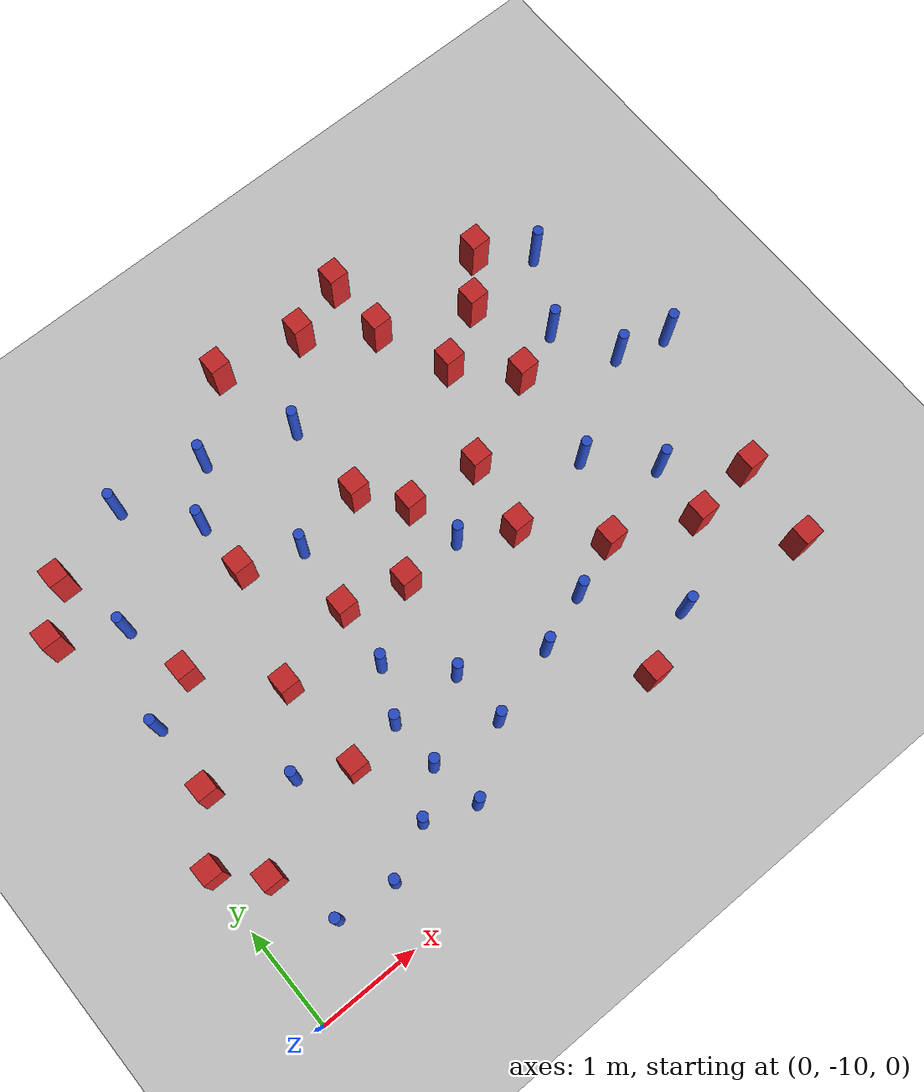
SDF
<sdf version="1.6">
 <world name="default">
  <model name="ground_plane">
   <static>1</static>
   <link name="link">
    <collision name="collision">
     <geometry><plane><normal>0 0 1</normal><size>100 100</size></plane></geometry>
     <surface><friction><ode><mu>100</mu><mu2>50</mu2></ode></friction></surface>
    </collision>
    <visual name="visual">
     <cast_shadows>0</cast_shadows>
     <geometry><plane><normal>0 0 1</normal><size>100 100</size></plane></geometry>
     <material>
      <ambient>1.0 1.0 1.0 1.0</ambient>
      <diffuse>0.8 0.8 0.8 1.0</diffuse>
      <specular>0.01 0.01 0.01 1.000000</specular>
     </material>
    </visual>
   </link>
  </model>
  <model name="pole_obstacle6">
   <static>true</static>
   <pose>6.08152852984 -5.63300464826 2.88873142074e-08 -9.90536690842e-09 4.60219948965e-07 -1.20965994976e-07</pose>
   <link name="link">
    <pose>0 0 0.3 0 -0 0</pose>
    <inertial>
     <mass>1</mass>
     <inertia><ixx>0.145833</ixx><ixy>0</ixy><ixz>0</ixz><iyy>0.145833</iyy><iyz>0</iyz><izz>0.125</izz></inertia>
    </inertial>
    <collision name="collision">
     <geometry><cylinder><radius>0.05</radius><length>.6</length></cylinder></geometry>
    </collision>
    <visual name="visual">
     <geometry><cylinder><radius>0.05</radius><length>.6</length></cylinder></geometry>
     <material>
      <script><name>Gazebo/Blue</name><uri>file://media/materials/scripts/gazebo.material</uri></script>
     </material>
    </visual>
   </link>
  </model>
  <model name="square_post_obstacle7">
   <static>true</static>
   <pose>1.57833472181 -8.45021443569 8.22691968438e-08 7.2212513382e-06 -7.54495500217e-07 2.29674213826e-05</pose>
   <link name="link">
    <pose>0 0 0.25 0 -0 0</pose>
    <inertial>
     <mass>100</mass>
     <inertia>
      <ixx>0.166667</ixx>
      <ixy>0</ixy>
      <ixz>0</ixz>
      <iyy>0.166667</iyy>
      <iyz>0</iyz>
      <izz>0.166667</izz>
     </inertia>
    </inertial>
    <collision name="collision"><geometry><box><size>.2 .2 .5</size></box></geometry></collision>
    <visual name="visual">
     <geometry><box><size>.2 .2 .5</size></box></geometry>
     <material>
      <script><name>Gazebo/Red</name><uri>file://media/materials/scripts/gazebo.material</uri></script>
     </material>
    </visual>
   </link>
  </model>
  <model name="pole_obstacle19">
   <static>true</static>
   <pose>5.99709892169 -6.95808218375 2.88873142074e-08 -9.90536690842e-09 4.60219948965e-07 -1.20965994976e-07</pose>
   <link name="link">
    <pose>0 0 0.3 0 -0 0</pose>
    <inertial>
     <mass>1</mass>
     <inertia><ixx>0.145833</ixx><ixy>0</ixy><ixz>0</ixz><iyy>0.145833</iyy><iyz>0</iyz><izz>0.125</izz></inertia>
    </inertial>
    <collision name="collision">
     <geometry><cylinder><radius>0.05</radius><length>.6</length></cylinder></geometry>
    </collision>
    <visual name="visual">
     <geometry><cylinder><radius>0.05</radius><length>.6</length></cylinder></geometry>
     <material>
      <script><name>Gazebo/Blue</name><uri>file://media/materials/scripts/gazebo.material</uri></script>
     </material>
    </visual>
   </link>
  </model>
  <model name="pole_obstacle22">
   <static>true</static>
   <pose>2.46301673832 -6.58063587267 2.88873142074e-08 -9.90536689859e-09 4.60219948989e-07 -1.20965994961e-07</pose>
   <link name="link">
    <pose>0 0 0.3 0 -0 0</pose>
    <inertial>
     <mass>1</mass>
     <inertia><ixx>0.145833</ixx><ixy>0</ixy><ixz>0</ixz><iyy>0.145833</iyy><iyz>0</iyz><izz>0.125</izz></inertia>
    </inertial>
    <collision name="collision">
     <geometry><cylinder><radius>0.05</radius><length>.6</length></cylinder></geometry>
    </collision>
    <visual name="visual">
     <geometry><cylinder><radius>0.05</radius><length>.6</length></cylinder></geometry>
     <material>
      <script><name>Gazebo/Blue</name><uri>file://media/materials/scripts/gazebo.material</uri></script>
     </material>
    </visual>
   </link>
  </model>
  <model name="square_post_obstacle18">
   <static>true</static>
   <pose>0.560268090838 -5.44637382726 8.22691968438e-08 7.2212513382e-06 -7.54495500217e-07 2.29674213826e-05</pose>
   <link name="link">
    <pose>0 0 0.25 0 -0 0</pose>
    <inertial>
     <mass>100</mass>
     <inertia>
      <ixx>0.166667</ixx>
      <ixy>0</ixy>
      <ixz>0</ixz>
      <iyy>0.166667</iyy>
      <iyz>0</iyz>
      <izz>0.166667</izz>
     </inertia>
    </inertial>
    <collision name="collision"><geometry><box><size>.2 .2 .5</size></box></geometry></collision>
    <visual name="visual">
     <geometry><box><size>.2 .2 .5</size></box></geometry>
     <material>
      <script><name>Gazebo/Red</name><uri>file://media/materials/scripts/gazebo.material</uri></script>
     </material>
    </visual>
   </link>
  </model>
  <model name="pole_obstacle29">
   <static>true</static>
   <pose>1.73550957042 -9.21399171767 2.88873142074e-08 -9.90536690474e-09 4.60219948974e-07 -1.2096599497e-07</pose>
   <link name="link">
    <pose>0 0 0.3 0 -0 0</pose>
    <inertial>
     <mass>1</mass>
     <inertia><ixx>0.145833</ixx><ixy>0</ixy><ixz>0</ixz><iyy>0.145833</iyy><iyz>0</iyz><izz>0.125</izz></inertia>
    </inertial>
    <collision name="collision">
     <geometry><cylinder><radius>0.05</radius><length>.6</length></cylinder></geometry>
    </collision>
    <visual name="visual">
     <geometry><cylinder><radius>0.05</radius><length>.6</length></cylinder></geometry>
     <material>
      <script><name>Gazebo/Blue</name><uri>file://media/materials/scripts/gazebo.material</uri></script>
     </material>
    </visual>
   </link>
  </model>
  <model name="pole_obstacle32">
   <static>true</static>
   <pose>3.58091865514 -8.71479385178 2.88873142074e-08 -9.90536692318e-09 4.6021994893e-07 -1.20965994988e-07</pose>
   <link name="link">
    <pose>0 0 0.3 0 -0 0</pose>
    <inertial>
     <mass>1</mass>
     <inertia><ixx>0.145833</ixx><ixy>0</ixy><ixz>0</ixz><iyy>0.145833</iyy><iyz>0</iyz><izz>0.125</izz></inertia>
    </inertial>
    <collision name="collision">
     <geometry><cylinder><radius>0.05</radius><length>.6</length></cylinder></geometry>
    </collision>
    <visual name="visual">
     <geometry><cylinder><radius>0.05</radius><length>.6</length></cylinder></geometry>
     <material>
      <script><name>Gazebo/Blue</name><uri>file://media/materials/scripts/gazebo.material</uri></script>
     </material>
    </visual>
   </link>
  </model>
  <model name="square_post_obstacle39">
   <static>true</static>
   <pose>3.75540542682 -4.87925624175 8.22691968438e-08 7.2212513382e-06 -7.54495500217e-07 2.29674213826e-05</pose>
   <link name="link">
    <pose>0 0 0.25 0 -0 0</pose>
    <inertial>
     <mass>100</mass>
     <inertia>
      <ixx>0.166667</ixx>
      <ixy>0</ixy>
      <ixz>0</ixz>
      <iyy>0.166667</iyy>
      <iyz>0</iyz>
      <izz>0.166667</izz>
     </inertia>
    </inertial>
    <collision name="collision"><geometry><box><size>.2 .2 .5</size></box></geometry></collision>
    <visual name="visual">
     <geometry><box><size>.2 .2 .5</size></box></geometry>
     <material>
      <script><name>Gazebo/Red</name><uri>file://media/materials/scripts/gazebo.material</uri></script>
     </material>
    </visual>
   </link>
  </model>
  <model name="square_post_obstacle43">
   <static>true</static>
   <pose>4.21651792102 -6.95678715362 8.22691968438e-08 7.22125133819e-06 -7.54495500217e-07 2.29674213826e-05</pose>
   <link name="link">
    <pose>0 0 0.25 0 -0 0</pose>
    <inertial>
     <mass>100</mass>
     <inertia>
      <ixx>0.166667</ixx>
      <ixy>0</ixy>
      <ixz>0</ixz>
      <iyy>0.166667</iyy>
      <iyz>0</iyz>
      <izz>0.166667</izz>
     </inertia>
    </inertial>
    <collision name="collision"><geometry><box><size>.2 .2 .5</size></box></geometry></collision>
    <visual name="visual">
     <geometry><box><size>.2 .2 .5</size></box></geometry>
     <material>
      <script><name>Gazebo/Red</name><uri>file://media/materials/scripts/gazebo.material</uri></script>
     </material>
    </visual>
   </link>
  </model>
  <model name="pole_obstacle56">
   <static>true</static>
   <pose>1.10849955858 -8.20325698353 2.88873142074e-08 -9.90536690474e-09 4.60219948974e-07 -1.2096599497e-07</pose>
   <link name="link">
    <pose>0 0 0.3 0 -0 0</pose>
    <inertial>
     <mass>1</mass>
     <inertia><ixx>0.145833</ixx><ixy>0</ixy><ixz>0</ixz><iyy>0.145833</iyy><iyz>0</iyz><izz>0.125</izz></inertia>
    </inertial>
    <collision name="collision">
     <geometry><cylinder><radius>0.05</radius><length>.6</length></cylinder></geometry>
    </collision>
    <visual name="visual">
     <geometry><cylinder><radius>0.05</radius><length>.6</length></cylinder></geometry>
     <material>
      <script><name>Gazebo/Blue</name><uri>file://media/materials/scripts/gazebo.material</uri></script>
     </material>
    </visual>
   </link>
  </model>
  <model name="pole_obstacle58">
   <static>true</static>
   <pose>2.80828941439 -8.3838005011 2.88873142074e-08 -9.90536692318e-09 4.6021994893e-07 -1.20965994988e-07</pose>
   <link name="link">
    <pose>0 0 0.3 0 -0 0</pose>
    <inertial>
     <mass>1</mass>
     <inertia><ixx>0.145833</ixx><ixy>0</ixy><ixz>0</ixz><iyy>0.145833</iyy><iyz>0</iyz><izz>0.125</izz></inertia>
    </inertial>
    <collision name="collision">
     <geometry><cylinder><radius>0.05</radius><length>.6</length></cylinder></geometry>
    </collision>
    <visual name="visual">
     <geometry><cylinder><radius>0.05</radius><length>.6</length></cylinder></geometry>
     <material>
      <script><name>Gazebo/Blue</name><uri>file://media/materials/scripts/gazebo.material</uri></script>
     </material>
    </visual>
   </link>
  </model>
  <model name="square_post_obstacle47">
   <static>true</static>
   <pose>4.66204527395 -6.02844257211 8.22691968438e-08 7.2212513382e-06 -7.54495500217e-07 2.29674213826e-05</pose>
   <link name="link">
    <pose>0 0 0.25 0 -0 0</pose>
    <inertial>
     <mass>100</mass>
     <inertia>
      <ixx>0.166667</ixx>
      <ixy>0</ixy>
      <ixz>0</ixz>
      <iyy>0.166667</iyy>
      <iyz>0</iyz>
      <izz>0.166667</izz>
     </inertia>
    </inertial>
    <collision name="collision"><geometry><box><size>.2 .2 .5</size></box></geometry></collision>
    <visual name="visual">
     <geometry><box><size>.2 .2 .5</size></box></geometry>
     <material>
      <script><name>Gazebo/Red</name><uri>file://media/materials/scripts/gazebo.material</uri></script>
     </material>
    </visual>
   </link>
  </model>
  <model name="pole_obstacle64">
   <static>true</static>
   <pose>3.13864372856 -5.6033911449 2.88873142074e-08 -9.90536689859e-09 4.60219948989e-07 -1.20965994961e-07</pose>
   <link name="link">
    <pose>0 0 0.3 0 -0 0</pose>
    <inertial>
     <mass>1</mass>
     <inertia><ixx>0.145833</ixx><ixy>0</ixy><ixz>0</ixz><iyy>0.145833</iyy><iyz>0</iyz><izz>0.125</izz></inertia>
    </inertial>
    <collision name="collision">
     <geometry><cylinder><radius>0.05</radius><length>.6</length></cylinder></geometry>
    </collision>
    <visual name="visual">
     <geometry><cylinder><radius>0.05</radius><length>.6</length></cylinder></geometry>
     <material>
      <script><name>Gazebo/Blue</name><uri>file://media/materials/scripts/gazebo.material</uri></script>
     </material>
    </visual>
   </link>
  </model>
  <model name="square_post_obstacle50">
   <static>true</static>
   <pose>4.1570333162 -9.49211455678 8.22691968438e-08 7.22125133819e-06 -7.54495500217e-07 2.29674213826e-05</pose>
   <link name="link">
    <pose>0 0 0.25 0 -0 0</pose>
    <inertial>
     <mass>100</mass>
     <inertia>
      <ixx>0.166667</ixx>
      <ixy>0</ixy>
      <ixz>0</ixz>
      <iyy>0.166667</iyy>
      <iyz>0</iyz>
      <izz>0.166667</izz>
     </inertia>
    </inertial>
    <collision name="collision"><geometry><box><size>.2 .2 .5</size></box></geometry></collision>
    <visual name="visual">
     <geometry><box><size>.2 .2 .5</size></box></geometry>
     <material>
      <script><name>Gazebo/Red</name><uri>file://media/materials/scripts/gazebo.material</uri></script>
     </material>
    </visual>
   </link>
  </model>
  <model name="pole_obstacle67">
   <static>true</static>
   <pose>0.763833975423 -6.17365451651 2.88873142074e-08 -9.90536689661e-09 4.60219948993e-07 -1.20965994957e-07</pose>
   <link name="link">
    <pose>0 0 0.3 0 -0 0</pose>
    <inertial>
     <mass>1</mass>
     <inertia><ixx>0.145833</ixx><ixy>0</ixy><ixz>0</ixz><iyy>0.145833</iyy><iyz>0</iyz><izz>0.125</izz></inertia>
    </inertial>
    <collision name="collision">
     <geometry><cylinder><radius>0.05</radius><length>.6</length></cylinder></geometry>
    </collision>
    <visual name="visual">
     <geometry><cylinder><radius>0.05</radius><length>.6</length></cylinder></geometry>
     <material>
      <script><name>Gazebo/Blue</name><uri>file://media/materials/scripts/gazebo.material</uri></script>
     </material>
    </visual>
   </link>
  </model>
  <model name="square_post_obstacle54">
   <static>true</static>
   <pose>3.17068396882 -6.46113396091 8.22691968438e-08 7.2212513382e-06 -7.54495500217e-07 2.29674213826e-05</pose>
   <link name="link">
    <pose>0 0 0.25 0 -0 0</pose>
    <inertial>
     <mass>100</mass>
     <inertia>
      <ixx>0.166667</ixx>
      <ixy>0</ixy>
      <ixz>0</ixz>
      <iyy>0.166667</iyy>
      <iyz>0</iyz>
      <izz>0.166667</izz>
     </inertia>
    </inertial>
    <collision name="collision"><geometry><box><size>.2 .2 .5</size></box></geometry></collision>
    <visual name="visual">
     <geometry><box><size>.2 .2 .5</size></box></geometry>
     <material>
      <script><name>Gazebo/Red</name><uri>file://media/materials/scripts/gazebo.material</uri></script>
     </material>
    </visual>
   </link>
  </model>
  <model name="square_post_obstacle63">
   <static>true</static>
   <pose>6.14803586256 -8.57509487366 8.22691968438e-08 7.22125133819e-06 -7.54495500217e-07 2.29674213826e-05</pose>
   <link name="link">
    <pose>0 0 0.25 0 -0 0</pose>
    <inertial>
     <mass>100</mass>
     <inertia>
      <ixx>0.166667</ixx>
      <ixy>0</ixy>
      <ixz>0</ixz>
      <iyy>0.166667</iyy>
      <iyz>0</iyz>
      <izz>0.166667</izz>
     </inertia>
    </inertial>
    <collision name="collision"><geometry><box><size>.2 .2 .5</size></box></geometry></collision>
    <visual name="visual">
     <geometry><box><size>.2 .2 .5</size></box></geometry>
     <material>
      <script><name>Gazebo/Red</name><uri>file://media/materials/scripts/gazebo.material</uri></script>
     </material>
    </visual>
   </link>
  </model>
  <model name="pole_obstacle82">
   <static>true</static>
   <pose>1.37285146026 -5.18811364395 2.88873142074e-08 -9.90536689852e-09 4.60219948989e-07 -1.2096599496e-07</pose>
   <link name="link">
    <pose>0 0 0.3 0 -0 0</pose>
    <inertial>
     <mass>1</mass>
     <inertia><ixx>0.145833</ixx><ixy>0</ixy><ixz>0</ixz><iyy>0.145833</iyy><iyz>0</iyz><izz>0.125</izz></inertia>
    </inertial>
    <collision name="collision">
     <geometry><cylinder><radius>0.05</radius><length>.6</length></cylinder></geometry>
    </collision>
    <visual name="visual">
     <geometry><cylinder><radius>0.05</radius><length>.6</length></cylinder></geometry>
     <material>
      <script><name>Gazebo/Blue</name><uri>file://media/materials/scripts/gazebo.material</uri></script>
     </material>
    </visual>
   </link>
  </model>
  <model name="pole_obstacle85">
   <static>true</static>
   <pose>6.49663846403 -7.09567303938 2.88873142074e-08 -9.90536690842e-09 4.60219948965e-07 -1.20965994976e-07</pose>
   <link name="link">
    <pose>0 0 0.3 0 -0 0</pose>
    <inertial>
     <mass>1</mass>
     <inertia><ixx>0.145833</ixx><ixy>0</ixy><ixz>0</ixz><iyy>0.145833</iyy><iyz>0</iyz><izz>0.125</izz></inertia>
    </inertial>
    <collision name="collision">
     <geometry><cylinder><radius>0.05</radius><length>.6</length></cylinder></geometry>
    </collision>
    <visual name="visual">
     <geometry><cylinder><radius>0.05</radius><length>.6</length></cylinder></geometry>
     <material>
      <script><name>Gazebo/Blue</name><uri>file://media/materials/scripts/gazebo.material</uri></script>
     </material>
    </visual>
   </link>
  </model>
  <model name="square_post_obstacle78">
   <static>true</static>
   <pose>2.91456003396 -4.7059901294 8.22691968438e-08 7.2212513382e-06 -7.54495500217e-07 2.29674213826e-05</pose>
   <link name="link">
    <pose>0 0 0.25 0 -0 0</pose>
    <inertial>
     <mass>100</mass>
     <inertia>
      <ixx>0.166667</ixx>
      <ixy>0</ixy>
      <ixz>0</ixz>
      <iyy>0.166667</iyy>
      <iyz>0</iyz>
      <izz>0.166667</izz>
     </inertia>
    </inertial>
    <collision name="collision"><geometry><box><size>.2 .2 .5</size></box></geometry></collision>
    <visual name="visual">
     <geometry><box><size>.2 .2 .5</size></box></geometry>
     <material>
      <script><name>Gazebo/Red</name><uri>file://media/materials/scripts/gazebo.material</uri></script>
     </material>
    </visual>
   </link>
  </model>
  <model name="square_post_obstacle85">
   <static>true</static>
   <pose>0.18270824977 -5.87151844309 8.22691968438e-08 7.2212513382e-06 -7.54495500217e-07 2.29674213826e-05</pose>
   <link name="link">
    <pose>0 0 0.25 0 -0 0</pose>
    <inertial>
     <mass>100</mass>
     <inertia>
      <ixx>0.166667</ixx>
      <ixy>0</ixy>
      <ixz>0</ixz>
      <iyy>0.166667</iyy>
      <iyz>0</iyz>
      <izz>0.166667</izz>
     </inertia>
    </inertial>
    <collision name="collision"><geometry><box><size>.2 .2 .5</size></box></geometry></collision>
    <visual name="visual">
     <geometry><box><size>.2 .2 .5</size></box></geometry>
     <material>
      <script><name>Gazebo/Red</name><uri>file://media/materials/scripts/gazebo.material</uri></script>
     </material>
    </visual>
   </link>
  </model>
  <model name="pole_obstacle92">
   <static>true</static>
   <pose>2.83224484801 -8.94576041262 2.88873142074e-08 -9.90536692318e-09 4.6021994893e-07 -1.20965994988e-07</pose>
   <link name="link">
    <pose>0 0 0.3 0 -0 0</pose>
    <inertial>
     <mass>1</mass>
     <inertia><ixx>0.145833</ixx><ixy>0</ixy><ixz>0</ixz><iyy>0.145833</iyy><iyz>0</iyz><izz>0.125</izz></inertia>
    </inertial>
    <collision name="collision">
     <geometry><cylinder><radius>0.05</radius><length>.6</length></cylinder></geometry>
    </collision>
    <visual name="visual">
     <geometry><cylinder><radius>0.05</radius><length>.6</length></cylinder></geometry>
     <material>
      <script><name>Gazebo/Blue</name><uri>file://media/materials/scripts/gazebo.material</uri></script>
     </material>
    </visual>
   </link>
  </model>
  <model name="pole_obstacle105">
   <static>true</static>
   <pose>3.61243399053 -7.41434056018 2.88873142074e-08 -9.90536689859e-09 4.60219948989e-07 -1.20965994961e-07</pose>
   <link name="link">
    <pose>0 0 0.3 0 -0 0</pose>
    <inertial>
     <mass>1</mass>
     <inertia><ixx>0.145833</ixx><ixy>0</ixy><ixz>0</ixz><iyy>0.145833</iyy><iyz>0</iyz><izz>0.125</izz></inertia>
    </inertial>
    <collision name="collision">
     <geometry><cylinder><radius>0.05</radius><length>.6</length></cylinder></geometry>
    </collision>
    <visual name="visual">
     <geometry><cylinder><radius>0.05</radius><length>.6</length></cylinder></geometry>
     <material>
      <script><name>Gazebo/Blue</name><uri>file://media/materials/scripts/gazebo.material</uri></script>
     </material>
    </visual>
   </link>
  </model>
  <model name="pole_obstacle110">
   <static>true</static>
   <pose>2.09834212718 -8.38146606773 2.88873142074e-08 -9.90536692318e-09 4.6021994893e-07 -1.20965994988e-07</pose>
   <link name="link">
    <pose>0 0 0.3 0 -0 0</pose>
    <inertial>
     <mass>1</mass>
     <inertia><ixx>0.145833</ixx><ixy>0</ixy><ixz>0</ixz><iyy>0.145833</iyy><iyz>0</iyz><izz>0.125</izz></inertia>
    </inertial>
    <collision name="collision">
     <geometry><cylinder><radius>0.05</radius><length>.6</length></cylinder></geometry>
    </collision>
    <visual name="visual">
     <geometry><cylinder><radius>0.05</radius><length>.6</length></cylinder></geometry>
     <material>
      <script><name>Gazebo/Blue</name><uri>file://media/materials/scripts/gazebo.material</uri></script>
     </material>
    </visual>
   </link>
  </model>
  <model name="square_post_obstacle104">
   <static>true</static>
   <pose>0.420391431967 -8.75553708273 8.22691968438e-08 7.22125133819e-06 -7.54495500217e-07 2.29674213826e-05</pose>
   <link name="link">
    <pose>0 0 0.25 0 -0 0</pose>
    <inertial>
     <mass>100</mass>
     <inertia>
      <ixx>0.166667</ixx>
      <ixy>0</ixy>
      <ixz>0</ixz>
      <iyy>0.166667</iyy>
      <iyz>0</iyz>
      <izz>0.166667</izz>
     </inertia>
    </inertial>
    <collision name="collision"><geometry><box><size>.2 .2 .5</size></box></geometry></collision>
    <visual name="visual">
     <geometry><box><size>.2 .2 .5</size></box></geometry>
     <material>
      <script><name>Gazebo/Red</name><uri>file://media/materials/scripts/gazebo.material</uri></script>
     </material>
    </visual>
   </link>
  </model>
  <model name="pole_obstacle119">
   <static>true</static>
   <pose>5.02923099776 -7.53817462661 2.88873142074e-08 -9.90536690842e-09 4.60219948965e-07 -1.20965994976e-07</pose>
   <link name="link">
    <pose>0 0 0.3 0 -0 0</pose>
    <inertial>
     <mass>1</mass>
     <inertia><ixx>0.145833</ixx><ixy>0</ixy><ixz>0</ixz><iyy>0.145833</iyy><iyz>0</iyz><izz>0.125</izz></inertia>
    </inertial>
    <collision name="collision">
     <geometry><cylinder><radius>0.05</radius><length>.6</length></cylinder></geometry>
    </collision>
    <visual name="visual">
     <geometry><cylinder><radius>0.05</radius><length>.6</length></cylinder></geometry>
     <material>
      <script><name>Gazebo/Blue</name><uri>file://media/materials/scripts/gazebo.material</uri></script>
     </material>
    </visual>
   </link>
  </model>
  <model name="pole_obstacle125">
   <static>true</static>
   <pose>2.27386237823 -5.32281968969 2.88873142074e-08 -9.90536689859e-09 4.60219948989e-07 -1.20965994961e-07</pose>
   <link name="link">
    <pose>0 0 0.3 0 -0 0</pose>
    <inertial>
     <mass>1</mass>
     <inertia><ixx>0.145833</ixx><ixy>0</ixy><ixz>0</ixz><iyy>0.145833</iyy><iyz>0</iyz><izz>0.125</izz></inertia>
    </inertial>
    <collision name="collision">
     <geometry><cylinder><radius>0.05</radius><length>.6</length></cylinder></geometry>
    </collision>
    <visual name="visual">
     <geometry><cylinder><radius>0.05</radius><length>.6</length></cylinder></geometry>
     <material>
      <script><name>Gazebo/Blue</name><uri>file://media/materials/scripts/gazebo.material</uri></script>
     </material>
    </visual>
   </link>
  </model>
  <model name="square_post_obstacle124">
   <static>true</static>
   <pose>6.03926945831 -9.42018053101 8.22691968438e-08 7.22125133819e-06 -7.54495500217e-07 2.29674213826e-05</pose>
   <link name="link">
    <pose>0 0 0.25 0 -0 0</pose>
    <inertial>
     <mass>100</mass>
     <inertia>
      <ixx>0.166667</ixx>
      <ixy>0</ixy>
      <ixz>0</ixz>
      <iyy>0.166667</iyy>
      <iyz>0</iyz>
      <izz>0.166667</izz>
     </inertia>
    </inertial>
    <collision name="collision"><geometry><box><size>.2 .2 .5</size></box></geometry></collision>
    <visual name="visual">
     <geometry><box><size>.2 .2 .5</size></box></geometry>
     <material>
      <script><name>Gazebo/Red</name><uri>file://media/materials/scripts/gazebo.material</uri></script>
     </material>
    </visual>
   </link>
  </model>
  <model name="square_post_obstacle125">
   <static>true</static>
   <pose>4.36141051367 -5.31009646893 8.22691968438e-08 7.2212513382e-06 -7.54495500217e-07 2.29674213826e-05</pose>
   <link name="link">
    <pose>0 0 0.25 0 -0 0</pose>
    <inertial>
     <mass>100</mass>
     <inertia>
      <ixx>0.166667</ixx>
      <ixy>0</ixy>
      <ixz>0</ixz>
      <iyy>0.166667</iyy>
      <iyz>0</iyz>
      <izz>0.166667</izz>
     </inertia>
    </inertial>
    <collision name="collision"><geometry><box><size>.2 .2 .5</size></box></geometry></collision>
    <visual name="visual">
     <geometry><box><size>.2 .2 .5</size></box></geometry>
     <material>
      <script><name>Gazebo/Red</name><uri>file://media/materials/scripts/gazebo.material</uri></script>
     </material>
    </visual>
   </link>
  </model>
  <model name="pole_obstacle130">
   <static>true</static>
   <pose>5.5388939167 -8.05983176999 2.88873142074e-08 -9.9053668967e-09 4.60219948993e-07 -1.20965994957e-07</pose>
   <link name="link">
    <pose>0 0 0.3 0 -0 0</pose>
    <inertial>
     <mass>1</mass>
     <inertia><ixx>0.145833</ixx><ixy>0</ixy><ixz>0</ixz><iyy>0.145833</iyy><iyz>0</iyz><izz>0.125</izz></inertia>
    </inertial>
    <collision name="collision">
     <geometry><cylinder><radius>0.05</radius><length>.6</length></cylinder></geometry>
    </collision>
    <visual name="visual">
     <geometry><cylinder><radius>0.05</radius><length>.6</length></cylinder></geometry>
     <material>
      <script><name>Gazebo/Blue</name><uri>file://media/materials/scripts/gazebo.material</uri></script>
     </material>
    </visual>
   </link>
  </model>
  <model name="pole_obstacle131">
   <static>true</static>
   <pose>2.21356055952 -9.3930273949 2.88873142074e-08 -9.90536692318e-09 4.6021994893e-07 -1.20965994988e-07</pose>
   <link name="link">
    <pose>0 0 0.3 0 -0 0</pose>
    <inertial>
     <mass>1</mass>
     <inertia><ixx>0.145833</ixx><ixy>0</ixy><ixz>0</ixz><iyy>0.145833</iyy><iyz>0</iyz><izz>0.125</izz></inertia>
    </inertial>
    <collision name="collision">
     <geometry><cylinder><radius>0.05</radius><length>.6</length></cylinder></geometry>
    </collision>
    <visual name="visual">
     <geometry><cylinder><radius>0.05</radius><length>.6</length></cylinder></geometry>
     <material>
      <script><name>Gazebo/Blue</name><uri>file://media/materials/scripts/gazebo.material</uri></script>
     </material>
    </visual>
   </link>
  </model>
  <model name="square_post_obstacle127">
   <static>true</static>
   <pose>1.56161774502 -7.50845139078 8.22691968438e-08 7.2212513382e-06 -7.54495500217e-07 2.29674213826e-05</pose>
   <link name="link">
    <pose>0 0 0.25 0 -0 0</pose>
    <inertial>
     <mass>100</mass>
     <inertia>
      <ixx>0.166667</ixx>
      <ixy>0</ixy>
      <ixz>0</ixz>
      <iyy>0.166667</iyy>
      <iyz>0</iyz>
      <izz>0.166667</izz>
     </inertia>
    </inertial>
    <collision name="collision"><geometry><box><size>.2 .2 .5</size></box></geometry></collision>
    <visual name="visual">
     <geometry><box><size>.2 .2 .5</size></box></geometry>
     <material>
      <script><name>Gazebo/Red</name><uri>file://media/materials/scripts/gazebo.material</uri></script>
     </material>
    </visual>
   </link>
  </model>
  <model name="pole_obstacle136">
   <static>true</static>
   <pose>1.22508812072 -9.46012278148 2.88873142074e-08 -9.90536690474e-09 4.60219948974e-07 -1.2096599497e-07</pose>
   <link name="link">
    <pose>0 0 0.3 0 -0 0</pose>
    <inertial>
     <mass>1</mass>
     <inertia><ixx>0.145833</ixx><ixy>0</ixy><ixz>0</ixz><iyy>0.145833</iyy><iyz>0</iyz><izz>0.125</izz></inertia>
    </inertial>
    <collision name="collision">
     <geometry><cylinder><radius>0.05</radius><length>.6</length></cylinder></geometry>
    </collision>
    <visual name="visual">
     <geometry><cylinder><radius>0.05</radius><length>.6</length></cylinder></geometry>
     <material>
      <script><name>Gazebo/Blue</name><uri>file://media/materials/scripts/gazebo.material</uri></script>
     </material>
    </visual>
   </link>
  </model>
  <model name="square_post_obstacle142">
   <static>true</static>
   <pose>5.13905748715 -6.5351651762 8.22691968438e-08 7.2212513382e-06 -7.54495500217e-07 2.29674213826e-05</pose>
   <link name="link">
    <pose>0 0 0.25 0 -0 0</pose>
    <inertial>
     <mass>100</mass>
     <inertia>
      <ixx>0.166667</ixx>
      <ixy>0</ixy>
      <ixz>0</ixz>
      <iyy>0.166667</iyy>
      <iyz>0</iyz>
      <izz>0.166667</izz>
     </inertia>
    </inertial>
    <collision name="collision"><geometry><box><size>.2 .2 .5</size></box></geometry></collision>
    <visual name="visual">
     <geometry><box><size>.2 .2 .5</size></box></geometry>
     <material>
      <script><name>Gazebo/Red</name><uri>file://media/materials/scripts/gazebo.material</uri></script>
     </material>
    </visual>
   </link>
  </model>
  <model name="pole_obstacle151">
   <static>true</static>
   <pose>1.8881149637 -5.81454612912 2.88873142074e-08 -9.90536689852e-09 4.60219948989e-07 -1.2096599496e-07</pose>
   <link name="link">
    <pose>0 0 0.3 0 -0 0</pose>
    <inertial>
     <mass>1</mass>
     <inertia><ixx>0.145833</ixx><ixy>0</ixy><ixz>0</ixz><iyy>0.145833</iyy><iyz>0</iyz><izz>0.125</izz></inertia>
    </inertial>
    <collision name="collision">
     <geometry><cylinder><radius>0.05</radius><length>.6</length></cylinder></geometry>
    </collision>
    <visual name="visual">
     <geometry><cylinder><radius>0.05</radius><length>.6</length></cylinder></geometry>
     <material>
      <script><name>Gazebo/Blue</name><uri>file://media/materials/scripts/gazebo.material</uri></script>
     </material>
    </visual>
   </link>
  </model>
  <model name="square_post_obstacle149">
   <static>true</static>
   <pose>2.39593141002 -7.27210738178 8.22691968438e-08 7.2212513382e-06 -7.54495500217e-07 2.29674213826e-05</pose>
   <link name="link">
    <pose>0 0 0.25 0 -0 0</pose>
    <inertial>
     <mass>100</mass>
     <inertia>
      <ixx>0.166667</ixx>
      <ixy>0</ixy>
      <ixz>0</ixz>
      <iyy>0.166667</iyy>
      <iyz>0</iyz>
      <izz>0.166667</izz>
     </inertia>
    </inertial>
    <collision name="collision"><geometry><box><size>.2 .2 .5</size></box></geometry></collision>
    <visual name="visual">
     <geometry><box><size>.2 .2 .5</size></box></geometry>
     <material>
      <script><name>Gazebo/Red</name><uri>file://media/materials/scripts/gazebo.material</uri></script>
     </material>
    </visual>
   </link>
  </model>
  <model name="square_post_obstacle151">
   <static>true</static>
   <pose>3.48980269588 -6.89151130861 8.22691968438e-08 7.2212513382e-06 -7.54495500217e-07 2.29674213826e-05</pose>
   <link name="link">
    <pose>0 0 0.25 0 -0 0</pose>
    <inertial>
     <mass>100</mass>
     <inertia>
      <ixx>0.166667</ixx>
      <ixy>0</ixy>
      <ixz>0</ixz>
      <iyy>0.166667</iyy>
      <iyz>0</iyz>
      <izz>0.166667</izz>
     </inertia>
    </inertial>
    <collision name="collision"><geometry><box><size>.2 .2 .5</size></box></geometry></collision>
    <visual name="visual">
     <geometry><box><size>.2 .2 .5</size></box></geometry>
     <material>
      <script><name>Gazebo/Red</name><uri>file://media/materials/scripts/gazebo.material</uri></script>
     </material>
    </visual>
   </link>
  </model>
  <model name="square_post_obstacle152">
   <static>true</static>
   <pose>4.10294558907 -7.6728812912 8.22691968438e-08 7.2212513382e-06 -7.54495500217e-07 2.29674213826e-05</pose>
   <link name="link">
    <pose>0 0 0.25 0 -0 0</pose>
    <inertial>
     <mass>100</mass>
     <inertia>
      <ixx>0.166667</ixx>
      <ixy>0</ixy>
      <ixz>0</ixz>
      <iyy>0.166667</iyy>
      <iyz>0</iyz>
      <izz>0.166667</izz>
     </inertia>
    </inertial>
    <collision name="collision"><geometry><box><size>.2 .2 .5</size></box></geometry></collision>
    <visual name="visual">
     <geometry><box><size>.2 .2 .5</size></box></geometry>
     <material>
      <script><name>Gazebo/Red</name><uri>file://media/materials/scripts/gazebo.material</uri></script>
     </material>
    </visual>
   </link>
  </model>
  <model name="pole_obstacle164">
   <static>true</static>
   <pose>4.14333781847 -8.51769153579 2.88873142074e-08 -9.9053668967e-09 4.60219948993e-07 -1.20965994957e-07</pose>
   <link name="link">
    <pose>0 0 0.3 0 -0 0</pose>
    <inertial>
     <mass>1</mass>
     <inertia><ixx>0.145833</ixx><ixy>0</ixy><ixz>0</ixz><iyy>0.145833</iyy><iyz>0</iyz><izz>0.125</izz></inertia>
    </inertial>
    <collision name="collision">
     <geometry><cylinder><radius>0.05</radius><length>.6</length></cylinder></geometry>
    </collision>
    <visual name="visual">
     <geometry><cylinder><radius>0.05</radius><length>.6</length></cylinder></geometry>
     <material>
      <script><name>Gazebo/Blue</name><uri>file://media/materials/scripts/gazebo.material</uri></script>
     </material>
    </visual>
   </link>
  </model>
  <model name="square_post_obstacle155">
   <static>true</static>
   <pose>0.442371488205 -7.80231492268 8.22691968438e-08 7.2212513382e-06 -7.54495500217e-07 2.29674213826e-05</pose>
   <link name="link">
    <pose>0 0 0.25 0 -0 0</pose>
    <inertial>
     <mass>100</mass>
     <inertia>
      <ixx>0.166667</ixx>
      <ixy>0</ixy>
      <ixz>0</ixz>
      <iyy>0.166667</iyy>
      <iyz>0</iyz>
      <izz>0.166667</izz>
     </inertia>
    </inertial>
    <collision name="collision"><geometry><box><size>.2 .2 .5</size></box></geometry></collision>
    <visual name="visual">
     <geometry><box><size>.2 .2 .5</size></box></geometry>
     <material>
      <script><name>Gazebo/Red</name><uri>file://media/materials/scripts/gazebo.material</uri></script>
     </material>
    </visual>
   </link>
  </model>
  <model name="square_post_obstacle167">
   <static>true</static>
   <pose>5.23831255186 -5.68662044302 8.22691968438e-08 7.2212513382e-06 -7.54495500217e-07 2.29674213826e-05</pose>
   <link name="link">
    <pose>0 0 0.25 0 -0 0</pose>
    <inertial>
     <mass>100</mass>
     <inertia>
      <ixx>0.166667</ixx>
      <ixy>0</ixy>
      <ixz>0</ixz>
      <iyy>0.166667</iyy>
      <iyz>0</iyz>
      <izz>0.166667</izz>
     </inertia>
    </inertial>
    <collision name="collision"><geometry><box><size>.2 .2 .5</size></box></geometry></collision>
    <visual name="visual">
     <geometry><box><size>.2 .2 .5</size></box></geometry>
     <material>
      <script><name>Gazebo/Red</name><uri>file://media/materials/scripts/gazebo.material</uri></script>
     </material>
    </visual>
   </link>
  </model>
  <model name="square_post_obstacle170">
   <static>true</static>
   <pose>4.68145808118 -8.30451319035 8.22691968438e-08 7.22125133819e-06 -7.54495500217e-07 2.29674213826e-05</pose>
   <link name="link">
    <pose>0 0 0.25 0 -0 0</pose>
    <inertial>
     <mass>100</mass>
     <inertia>
      <ixx>0.166667</ixx>
      <ixy>0</ixy>
      <ixz>0</ixz>
      <iyy>0.166667</iyy>
      <iyz>0</iyz>
      <izz>0.166667</izz>
     </inertia>
    </inertial>
    <collision name="collision"><geometry><box><size>.2 .2 .5</size></box></geometry></collision>
    <visual name="visual">
     <geometry><box><size>.2 .2 .5</size></box></geometry>
     <material>
      <script><name>Gazebo/Red</name><uri>file://media/materials/scripts/gazebo.material</uri></script>
     </material>
    </visual>
   </link>
  </model>
  <model name="pole_obstacle171">
   <static>true</static>
   <pose>4.78697049235 -9.23301375836 2.88873142074e-08 -9.9053668967e-09 4.60219948993e-07 -1.20965994957e-07</pose>
   <link name="link">
    <pose>0 0 0.3 0 -0 0</pose>
    <inertial>
     <mass>1</mass>
     <inertia><ixx>0.145833</ixx><ixy>0</ixy><ixz>0</ixz><iyy>0.145833</iyy><iyz>0</iyz><izz>0.125</izz></inertia>
    </inertial>
    <collision name="collision">
     <geometry><cylinder><radius>0.05</radius><length>.6</length></cylinder></geometry>
    </collision>
    <visual name="visual">
     <geometry><cylinder><radius>0.05</radius><length>.6</length></cylinder></geometry>
     <material>
      <script><name>Gazebo/Blue</name><uri>file://media/materials/scripts/gazebo.material</uri></script>
     </material>
    </visual>
   </link>
  </model>
  <model name="square_post_obstacle178">
   <static>true</static>
   <pose>0.0559861048121 -8.39608705083 8.22691968438e-08 7.22125133819e-06 -7.54495500217e-07 2.29674213826e-05</pose>
   <link name="link">
    <pose>0 0 0.25 0 -0 0</pose>
    <inertial>
     <mass>100</mass>
     <inertia>
      <ixx>0.166667</ixx>
      <ixy>0</ixy>
      <ixz>0</ixz>
      <iyy>0.166667</iyy>
      <iyz>0</iyz>
      <izz>0.166667</izz>
     </inertia>
    </inertial>
    <collision name="collision"><geometry><box><size>.2 .2 .5</size></box></geometry></collision>
    <visual name="visual">
     <geometry><box><size>.2 .2 .5</size></box></geometry>
     <material>
      <script><name>Gazebo/Red</name><uri>file://media/materials/scripts/gazebo.material</uri></script>
     </material>
    </visual>
   </link>
  </model>
  <model name="pole_obstacle180">
   <static>true</static>
   <pose>0.44869037397 -7.08563978436 2.88873142074e-08 -9.90536689683e-09 4.60219948993e-07 -1.20965994957e-07</pose>
   <link name="link">
    <pose>0 0 0.3 0 -0 0</pose>
    <inertial>
     <mass>1</mass>
     <inertia><ixx>0.145833</ixx><ixy>0</ixy><ixz>0</ixz><iyy>0.145833</iyy><iyz>0</iyz><izz>0.125</izz></inertia>
    </inertial>
    <collision name="collision">
     <geometry><cylinder><radius>0.05</radius><length>.6</length></cylinder></geometry>
    </collision>
    <visual name="visual">
     <geometry><cylinder><radius>0.05</radius><length>.6</length></cylinder></geometry>
     <material>
      <script><name>Gazebo/Blue</name><uri>file://media/materials/scripts/gazebo.material</uri></script>
     </material>
    </visual>
   </link>
  </model>
  <model name="square_post_obstacle182">
   <static>true</static>
   <pose>4.34013839052 -4.68117877684 8.22691968438e-08 7.2212513382e-06 -7.54495500217e-07 2.29674213826e-05</pose>
   <link name="link">
    <pose>0 0 0.25 0 -0 0</pose>
    <inertial>
     <mass>100</mass>
     <inertia>
      <ixx>0.166667</ixx>
      <ixy>0</ixy>
      <ixz>0</ixz>
      <iyy>0.166667</iyy>
      <iyz>0</iyz>
      <izz>0.166667</izz>
     </inertia>
    </inertial>
    <collision name="collision"><geometry><box><size>.2 .2 .5</size></box></geometry></collision>
    <visual name="visual">
     <geometry><box><size>.2 .2 .5</size></box></geometry>
     <material>
      <script><name>Gazebo/Red</name><uri>file://media/materials/scripts/gazebo.material</uri></script>
     </material>
    </visual>
   </link>
  </model>
  <model name="square_post_obstacle187">
   <static>true</static>
   <pose>5.47686510576 -8.65083359354 8.22691968438e-08 7.22125133819e-06 -7.54495500217e-07 2.29674213826e-05</pose>
   <link name="link">
    <pose>0 0 0.25 0 -0 0</pose>
    <inertial>
     <mass>100</mass>
     <inertia>
      <ixx>0.166667</ixx>
      <ixy>0</ixy>
      <ixz>0</ixz>
      <iyy>0.166667</iyy>
      <iyz>0</iyz>
      <izz>0.166667</izz>
     </inertia>
    </inertial>
    <collision name="collision"><geometry><box><size>.2 .2 .5</size></box></geometry></collision>
    <visual name="visual">
     <geometry><box><size>.2 .2 .5</size></box></geometry>
     <material>
      <script><name>Gazebo/Red</name><uri>file://media/materials/scripts/gazebo.material</uri></script>
     </material>
    </visual>
   </link>
  </model>
  <model name="square_post_obstacle191">
   <static>true</static>
   <pose>2.99907046387 -7.42755961272 8.22691968438e-08 7.2212513382e-06 -7.54495500217e-07 2.29674213826e-05</pose>
   <link name="link">
    <pose>0 0 0.25 0 -0 0</pose>
    <inertial>
     <mass>100</mass>
     <inertia>
      <ixx>0.166667</ixx>
      <ixy>0</ixy>
      <ixz>0</ixz>
      <iyy>0.166667</iyy>
      <iyz>0</iyz>
      <izz>0.166667</izz>
     </inertia>
    </inertial>
    <collision name="collision"><geometry><box><size>.2 .2 .5</size></box></geometry></collision>
    <visual name="visual">
     <geometry><box><size>.2 .2 .5</size></box></geometry>
     <material>
      <script><name>Gazebo/Red</name><uri>file://media/materials/scripts/gazebo.material</uri></script>
     </material>
    </visual>
   </link>
  </model>
  <model name="square_post_obstacle197">
   <static>true</static>
   <pose>5.61369049953 -5.26182189728 8.22691968438e-08 7.2212513382e-06 -7.54495500217e-07 2.29674213826e-05</pose>
   <link name="link">
    <pose>0 0 0.25 0 -0 0</pose>
    <inertial>
     <mass>100</mass>
     <inertia>
      <ixx>0.166667</ixx>
      <ixy>0</ixy>
      <ixz>0</ixz>
      <iyy>0.166667</iyy>
      <iyz>0</iyz>
      <izz>0.166667</izz>
     </inertia>
    </inertial>
    <collision name="collision"><geometry><box><size>.2 .2 .5</size></box></geometry></collision>
    <visual name="visual">
     <geometry><box><size>.2 .2 .5</size></box></geometry>
     <material>
      <script><name>Gazebo/Red</name><uri>file://media/materials/scripts/gazebo.material</uri></script>
     </material>
    </visual>
   </link>
  </model>
  <model name="square_post_obstacle200">
   <static>true</static>
   <pose>0.936135954497 -6.84432251559 8.22691968438e-08 7.2212513382e-06 -7.54495500217e-07 2.29674213826e-05</pose>
   <link name="link">
    <pose>0 0 0.25 0 -0 0</pose>
    <inertial>
     <mass>100</mass>
     <inertia>
      <ixx>0.166667</ixx>
      <ixy>0</ixy>
      <ixz>0</ixz>
      <iyy>0.166667</iyy>
      <iyz>0</iyz>
      <izz>0.166667</izz>
     </inertia>
    </inertial>
    <collision name="collision"><geometry><box><size>.2 .2 .5</size></box></geometry></collision>
    <visual name="visual">
     <geometry><box><size>.2 .2 .5</size></box></geometry>
     <material>
      <script><name>Gazebo/Red</name><uri>file://media/materials/scripts/gazebo.material</uri></script>
     </material>
    </visual>
   </link>
  </model>
  <model name="square_post_obstacle204">
   <static>true</static>
   <pose>1.90280946703 -6.39068532366 8.22691968438e-08 7.2212513382e-06 -7.54495500217e-07 2.29674213826e-05</pose>
   <link name="link">
    <pose>0 0 0.25 0 -0 0</pose>
    <inertial>
     <mass>100</mass>
     <inertia>
      <ixx>0.166667</ixx>
      <ixy>0</ixy>
      <ixz>0</ixz>
      <iyy>0.166667</iyy>
      <iyz>0</iyz>
      <izz>0.166667</izz>
     </inertia>
    </inertial>
    <collision name="collision"><geometry><box><size>.2 .2 .5</size></box></geometry></collision>
    <visual name="visual">
     <geometry><box><size>.2 .2 .5</size></box></geometry>
     <material>
      <script><name>Gazebo/Red</name><uri>file://media/materials/scripts/gazebo.material</uri></script>
     </material>
    </visual>
   </link>
  </model>
  <model name="pole_obstacle203">
   <static>true</static>
   <pose>5.67062608351 -6.36144863251 2.88873142074e-08 -9.90536690842e-09 4.60219948965e-07 -1.20965994976e-07</pose>
   <link name="link">
    <pose>0 0 0.3 0 -0 0</pose>
    <inertial>
     <mass>1</mass>
     <inertia><ixx>0.145833</ixx><ixy>0</ixy><ixz>0</ixz><iyy>0.145833</iyy><iyz>0</iyz><izz>0.125</izz></inertia>
    </inertial>
    <collision name="collision">
     <geometry><cylinder><radius>0.05</radius><length>.6</length></cylinder></geometry>
    </collision>
    <visual name="visual">
     <geometry><cylinder><radius>0.05</radius><length>.6</length></cylinder></geometry>
     <material>
      <script><name>Gazebo/Blue</name><uri>file://media/materials/scripts/gazebo.material</uri></script>
     </material>
    </visual>
   </link>
  </model>
  <model name="pole_obstacle209">
   <static>true</static>
   <pose>2.33737999266 -7.88813936355 2.88873142074e-08 -9.90536689859e-09 4.60219948989e-07 -1.20965994961e-07</pose>
   <link name="link">
    <pose>0 0 0.3 0 -0 0</pose>
    <inertial>
     <mass>1</mass>
     <inertia><ixx>0.145833</ixx><ixy>0</ixy><ixz>0</ixz><iyy>0.145833</iyy><iyz>0</iyz><izz>0.125</izz></inertia>
    </inertial>
    <collision name="collision">
     <geometry><cylinder><radius>0.05</radius><length>.6</length></cylinder></geometry>
    </collision>
    <visual name="visual">
     <geometry><cylinder><radius>0.05</radius><length>.6</length></cylinder></geometry>
     <material>
      <script><name>Gazebo/Blue</name><uri>file://media/materials/scripts/gazebo.material</uri></script>
     </material>
    </visual>
   </link>
  </model>
  <model name="pole_obstacle215">
   <static>true</static>
   <pose>2.12469000913 -8.89095997959 2.88873142074e-08 -9.90536692318e-09 4.6021994893e-07 -1.20965994988e-07</pose>
   <link name="link">
    <pose>0 0 0.3 0 -0 0</pose>
    <inertial>
     <mass>1</mass>
     <inertia><ixx>0.145833</ixx><ixy>0</ixy><ixz>0</ixz><iyy>0.145833</iyy><iyz>0</iyz><izz>0.125</izz></inertia>
    </inertial>
    <collision name="collision">
     <geometry><cylinder><radius>0.05</radius><length>.6</length></cylinder></geometry>
    </collision>
    <visual name="visual">
     <geometry><cylinder><radius>0.05</radius><length>.6</length></cylinder></geometry>
     <material>
      <script><name>Gazebo/Blue</name><uri>file://media/materials/scripts/gazebo.material</uri></script>
     </material>
    </visual>
   </link>
  </model>
  <model name="pole_obstacle218">
   <static>true</static>
   <pose>0.648346009133 -9.39339997959 2.88873142074e-08 -9.90536690753e-09 4.60219948967e-07 -1.20965994975e-07</pose>
   <link name="link">
    <pose>0 0 0.3 0 -0 0</pose>
    <inertial>
     <mass>1</mass>
     <inertia><ixx>0.145833</ixx><ixy>0</ixy><ixz>0</ixz><iyy>0.145833</iyy><iyz>0</iyz><izz>0.125</izz></inertia>
    </inertial>
    <collision name="collision">
     <geometry><cylinder><radius>0.05</radius><length>.6</length></cylinder></geometry>
    </collision>
    <visual name="visual">
     <geometry><cylinder><radius>0.05</radius><length>.6</length></cylinder></geometry>
     <material>
      <script><name>Gazebo/Blue</name><uri>file://media/materials/scripts/gazebo.material</uri></script>
     </material>
    </visual>
   </link>
  </model>
 </world>
</sdf>
